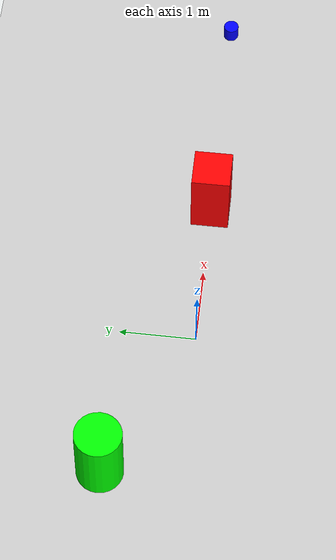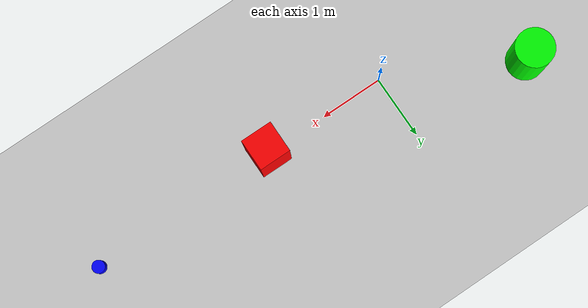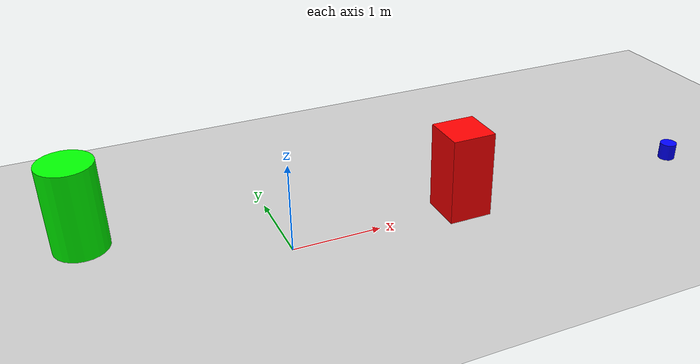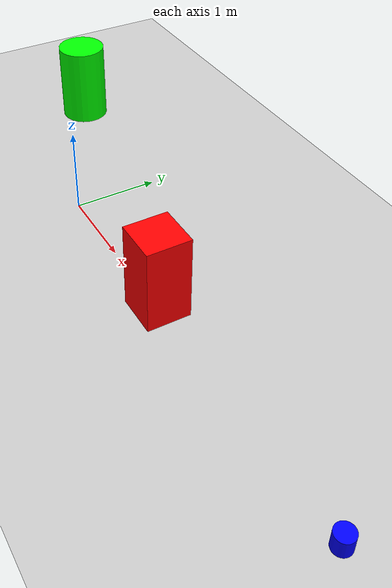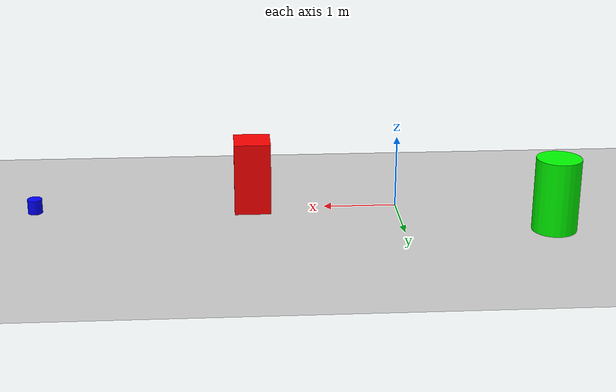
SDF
<?xml version="1.0" ?>
<sdf version="1.7">
  <world name="simple_obstacle_course">
    <!-- Physics engine configuration -->
    <physics name="ode_physics" type="ode">
      <max_step_size>0.001</max_step_size>
      <real_time_factor>1.0</real_time_factor>
      <real_time_update_rate>1000.0</real_time_update_rate>
      <gravity>0 0 -9.8</gravity>
    </physics>

    <!-- Lighting -->
    <light name="sun" type="directional">
      <cast_shadows>true</cast_shadows>
      <pose>0 0 10 0 0 0</pose>
      <diffuse>0.8 0.8 0.8 1</diffuse>
      <specular>0.2 0.2 0.2 1</specular>
      <attenuation>
        <range>1000</range>
        <constant>0.9</constant>
        <linear>0.01</linear>
        <quadratic>0.001</quadratic>
      </attenuation>
      <direction>-0.6 0.4 -0.8</direction>
    </light>

    <!-- Ground plane -->
    <model name="ground_plane">
      <static>true</static>
      <link name="link">
        <collision name="collision">
          <geometry>
            <plane>
              <normal>0 0 1</normal>
              <size>100 100</size>
            </plane>
          </geometry>
        </collision>
        <visual name="visual">
          <geometry>
            <plane>
              <normal>0 0 1</normal>
              <size>100 100</size>
            </plane>
          </geometry>
          <material>
            <ambient>0.8 0.8 0.8 1</ambient>
            <diffuse>0.8 0.8 0.8 1</diffuse>
            <specular>0.8 0.8 0.8 1</specular>
          </material>
        </visual>
      </link>
    </model>

    <!-- Simple obstacles -->
    <model name="obstacle_1">
      <pose>2 0 0.5 0 0 0</pose>
      <link name="link">
        <collision name="collision">
          <geometry>
            <box>
              <size>0.5 0.5 1.0</size>
            </box>
          </geometry>
        </collision>
        <visual name="visual">
          <geometry>
            <box>
              <size>0.5 0.5 1.0</size>
            </box>
          </geometry>
          <material>
            <ambient>1 0 0 1</ambient>
            <diffuse>1 0 0 1</diffuse>
            <specular>1 0 0 1</specular>
          </material>
        </visual>
        <inertial>
          <mass>1.0</mass>
          <inertia>
            <ixx>0.083</ixx>
            <ixy>0</ixy>
            <ixz>0</ixz>
            <iyy>0.083</iyy>
            <iyz>0</iyz>
            <izz>0.083</izz>
          </inertia>
        </inertial>
      </link>
    </model>

    <model name="obstacle_2">
      <pose>-2 1 0.5 0 0 0</pose>
      <link name="link">
        <collision name="collision">
          <geometry>
            <cylinder>
              <radius>0.3</radius>
              <length>1.0</length>
            </cylinder>
          </geometry>
        </collision>
        <visual name="visual">
          <geometry>
            <cylinder>
              <radius>0.3</radius>
              <length>1.0</length>
            </cylinder>
          </geometry>
          <material>
            <ambient>0 1 0 1</ambient>
            <diffuse>0 1 0 1</diffuse>
            <specular>0 1 0 1</specular>
          </material>
        </visual>
        <inertial>
          <mass>1.0</mass>
          <inertia>
            <ixx>0.125</ixx>
            <ixy>0</ixy>
            <ixz>0</ixz>
            <iyy>0.125</iyy>
            <iyz>0</iyz>
            <izz>0.045</izz>
          </inertia>
        </inertial>
      </link>
    </model>

    <!-- Goal marker -->
    <model name="goal_marker">
      <pose>5 0 0.1 0 0 0</pose>
      <link name="link">
        <visual name="visual">
          <geometry>
            <cylinder>
              <radius>0.1</radius>
              <length>0.2</length>
            </cylinder>
          </geometry>
          <material>
            <ambient>0 0 1 1</ambient>
            <diffuse>0 0 1 1</diffuse>
            <specular>0 0 1 1</specular>
          </material>
        </visual>
      </link>
    </model>
  </world>
</sdf>
